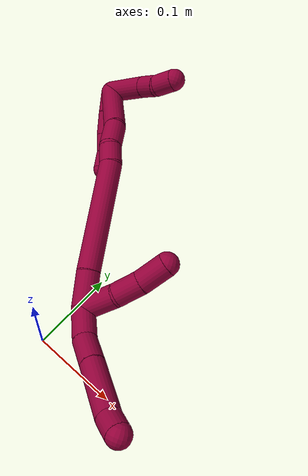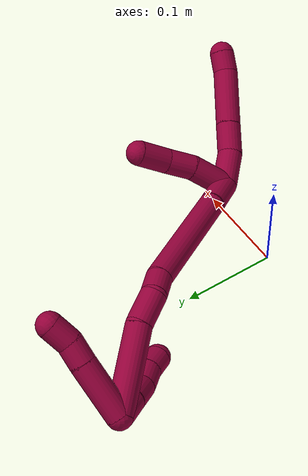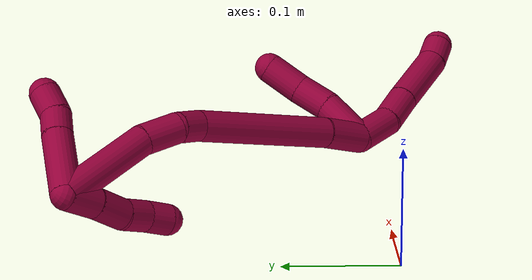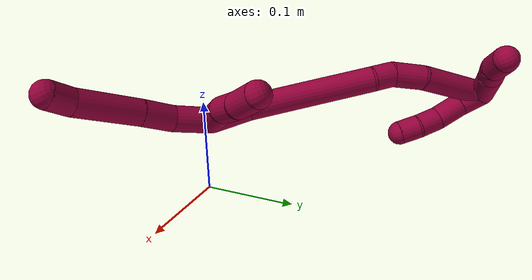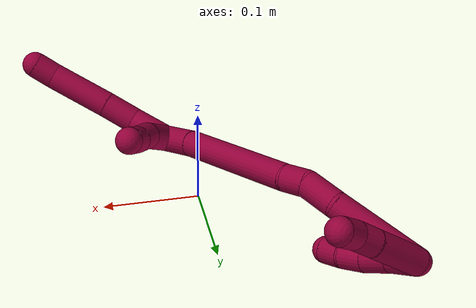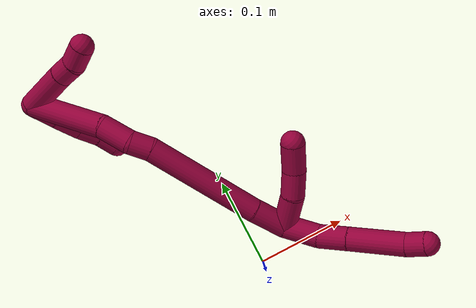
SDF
<sdf version="1.7">
 <world name="default">
  <model name="8">
   <static>0</static>
   <link name="8">
    <collision name="collision-cylinder-e_1_2_8">
     <pose>0.002131 -0.013171 -0.012913 2.34633 0.115004 0.272422</pose>
     <geometry><cylinder><radius>0.0125</radius><length>0.037136</length></cylinder></geometry>
     <surface>
      <friction><ode><mu>1.16</mu><mu2>1.16</mu2><slip1>0</slip1><slip2>0</slip2></ode></friction>
      <contact><ode><kp>1e+06</kp><kd>1</kd><max_vel>0</max_vel><min_depth>0.001</min_depth></ode></contact>
     </surface>
    </collision>
    <visual name="visual-cylinder-e_1_2_8">
     <pose>0.002131 -0.013171 -0.012913 2.34633 0.115004 0.272422</pose>
     <geometry><cylinder><radius>0.0125</radius><length>0.037136</length></cylinder></geometry>
     <material><ambient>0.584314 0 0.227451 1</ambient></material>
    </visual>
    <collision name="collision-cylinder-e_2_8_9">
     <pose>0.007365 -0.039971 -0.033172 2.06512 0.197854 0.329466</pose>
     <geometry><cylinder><radius>0.0125</radius><length>0.031581</length></cylinder></geometry>
     <surface>
      <friction><ode><mu>1.16</mu><mu2>1.16</mu2><slip1>0</slip1><slip2>0</slip2></ode></friction>
      <contact><ode><kp>1e+06</kp><kd>1</kd><max_vel>0</max_vel><min_depth>0.001</min_depth></ode></contact>
     </surface>
    </collision>
    <visual name="visual-cylinder-e_2_8_9">
     <pose>0.007365 -0.039971 -0.033172 2.06512 0.197854 0.329466</pose>
     <geometry><cylinder><radius>0.0125</radius><length>0.031581</length></cylinder></geometry>
     <material><ambient>0.584314 0 0.227451 1</ambient></material>
    </visual>
    <collision name="collision-cylinder-e_3_9_10">
     <pose>0.016707 -0.078807 -0.055343 2.10244 0.210161 0.364679</pose>
     <geometry><cylinder><radius>0.0125</radius><length>0.059804</length></cylinder></geometry>
     <surface>
      <friction><ode><mu>1.16</mu><mu2>1.16</mu2><slip1>0</slip1><slip2>0</slip2></ode></friction>
      <contact><ode><kp>1e+06</kp><kd>1</kd><max_vel>0</max_vel><min_depth>0.001</min_depth></ode></contact>
     </surface>
    </collision>
    <visual name="visual-cylinder-e_3_9_10">
     <pose>0.016707 -0.078807 -0.055343 2.10244 0.210161 0.364679</pose>
     <geometry><cylinder><radius>0.0125</radius><length>0.059804</length></cylinder></geometry>
     <material><ambient>0.584314 0 0.227451 1</ambient></material>
    </visual>
    <collision name="collision-cylinder-e_4_10_6">
     <pose>0.025448 -0.113992 -0.073256 1.87091 0.235201 0.317769</pose>
     <geometry><cylinder><radius>0.0125</radius><length>0.021479</length></cylinder></geometry>
     <surface>
      <friction><ode><mu>1.16</mu><mu2>1.16</mu2><slip1>0</slip1><slip2>0</slip2></ode></friction>
      <contact><ode><kp>1e+06</kp><kd>1</kd><max_vel>0</max_vel><min_depth>0.001</min_depth></ode></contact>
     </surface>
    </collision>
    <visual name="visual-cylinder-e_4_10_6">
     <pose>0.025448 -0.113992 -0.073256 1.87091 0.235201 0.317769</pose>
     <geometry><cylinder><radius>0.0125</radius><length>0.021479</length></cylinder></geometry>
     <material><ambient>0.584314 0 0.227451 1</ambient></material>
    </visual>
    <collision name="collision-cylinder-e_1_2_11">
     <pose>0.009949 -0.012005 0.01236 0.770799 0.523637 0.216573</pose>
     <geometry><cylinder><radius>0.0125</radius><length>0.039793</length></cylinder></geometry>
     <surface>
      <friction><ode><mu>1.16</mu><mu2>1.16</mu2><slip1>0</slip1><slip2>0</slip2></ode></friction>
      <contact><ode><kp>1e+06</kp><kd>1</kd><max_vel>0</max_vel><min_depth>0.001</min_depth></ode></contact>
     </surface>
    </collision>
    <visual name="visual-cylinder-e_1_2_11">
     <pose>0.009949 -0.012005 0.01236 0.770799 0.523637 0.216573</pose>
     <geometry><cylinder><radius>0.0125</radius><length>0.039793</length></cylinder></geometry>
     <material><ambient>0.584314 0 0.227451 1</ambient></material>
    </visual>
    <collision name="collision-cylinder-e_2_11_12">
     <pose>0.02797 -0.029822 0.034938 0.517295 0.601747 0.163824</pose>
     <geometry><cylinder><radius>0.0125</radius><length>0.02852</length></cylinder></geometry>
     <surface>
      <friction><ode><mu>1.16</mu><mu2>1.16</mu2><slip1>0</slip1><slip2>0</slip2></ode></friction>
      <contact><ode><kp>1e+06</kp><kd>1</kd><max_vel>0</max_vel><min_depth>0.001</min_depth></ode></contact>
     </surface>
    </collision>
    <visual name="visual-cylinder-e_2_11_12">
     <pose>0.02797 -0.029822 0.034938 0.517295 0.601747 0.163824</pose>
     <geometry><cylinder><radius>0.0125</radius><length>0.02852</length></cylinder></geometry>
     <material><ambient>0.584314 0 0.227451 1</ambient></material>
    </visual>
    <collision name="collision-cylinder-e_3_12_5">
     <pose>0.04297 -0.042406 0.057692 0.495145 0.452576 0.116254</pose>
     <geometry><cylinder><radius>0.0125</radius><length>0.031688</length></cylinder></geometry>
     <surface>
      <friction><ode><mu>1.16</mu><mu2>1.16</mu2><slip1>0</slip1><slip2>0</slip2></ode></friction>
      <contact><ode><kp>1e+06</kp><kd>1</kd><max_vel>0</max_vel><min_depth>0.001</min_depth></ode></contact>
     </surface>
    </collision>
    <visual name="visual-cylinder-e_3_12_5">
     <pose>0.04297 -0.042406 0.057692 0.495145 0.452576 0.116254</pose>
     <geometry><cylinder><radius>0.0125</radius><length>0.031688</length></cylinder></geometry>
     <material><ambient>0.584314 0 0.227451 1</ambient></material>
    </visual>
    <collision name="collision-cylinder-e_1_2_13">
     <pose>-0.002477 0.005154 0.018198 -0.276004 -0.130235 0.018113</pose>
     <geometry><cylinder><radius>0.0125</radius><length>0.038152</length></cylinder></geometry>
     <surface>
      <friction><ode><mu>1.16</mu><mu2>1.16</mu2><slip1>0</slip1><slip2>0</slip2></ode></friction>
      <contact><ode><kp>1e+06</kp><kd>1</kd><max_vel>0</max_vel><min_depth>0.001</min_depth></ode></contact>
     </surface>
    </collision>
    <visual name="visual-cylinder-e_1_2_13">
     <pose>-0.002477 0.005154 0.018198 -0.276004 -0.130235 0.018113</pose>
     <geometry><cylinder><radius>0.0125</radius><length>0.038152</length></cylinder></geometry>
     <material><ambient>0.584314 0 0.227451 1</ambient></material>
    </visual>
    <collision name="collision-cylinder-e_2_13_14">
     <pose>-0.007753 0.030241 0.094896 -0.328394 -0.045247 0.007498</pose>
     <geometry><cylinder><radius>0.0125</radius><length>0.12373</length></cylinder></geometry>
     <surface>
      <friction><ode><mu>1.16</mu><mu2>1.16</mu2><slip1>0</slip1><slip2>0</slip2></ode></friction>
      <contact><ode><kp>1e+06</kp><kd>1</kd><max_vel>0</max_vel><min_depth>0.001</min_depth></ode></contact>
     </surface>
    </collision>
    <visual name="visual-cylinder-e_2_13_14">
     <pose>-0.007753 0.030241 0.094896 -0.328394 -0.045247 0.007498</pose>
     <geometry><cylinder><radius>0.0125</radius><length>0.12373</length></cylinder></geometry>
     <material><ambient>0.584314 0 0.227451 1</ambient></material>
    </visual>
    <collision name="collision-cylinder-e_3_14_15">
     <pose>-0.012856 0.05517 0.16293 -0.482699 -0.210959 0.052109</pose>
     <geometry><cylinder><radius>0.0125</radius><length>0.022017</length></cylinder></geometry>
     <surface>
      <friction><ode><mu>1.16</mu><mu2>1.16</mu2><slip1>0</slip1><slip2>0</slip2></ode></friction>
      <contact><ode><kp>1e+06</kp><kd>1</kd><max_vel>0</max_vel><min_depth>0.001</min_depth></ode></contact>
     </surface>
    </collision>
    <visual name="visual-cylinder-e_3_14_15">
     <pose>-0.012856 0.05517 0.16293 -0.482699 -0.210959 0.052109</pose>
     <geometry><cylinder><radius>0.0125</radius><length>0.022017</length></cylinder></geometry>
     <material><ambient>0.584314 0 0.227451 1</ambient></material>
    </visual>
    <collision name="collision-cylinder-e_4_15_16">
     <pose>-0.01397 0.070174 0.18545 -0.656549 0.072573 -0.024728</pose>
     <geometry><cylinder><radius>0.0125</radius><length>0.032874</length></cylinder></geometry>
     <surface>
      <friction><ode><mu>1.16</mu><mu2>1.16</mu2><slip1>0</slip1><slip2>0</slip2></ode></friction>
      <contact><ode><kp>1e+06</kp><kd>1</kd><max_vel>0</max_vel><min_depth>0.001</min_depth></ode></contact>
     </surface>
    </collision>
    <visual name="visual-cylinder-e_4_15_16">
     <pose>-0.01397 0.070174 0.18545 -0.656549 0.072573 -0.024728</pose>
     <geometry><cylinder><radius>0.0125</radius><length>0.032874</length></cylinder></geometry>
     <material><ambient>0.584314 0 0.227451 1</ambient></material>
    </visual>
    <collision name="collision-cylinder-e_5_16_1">
     <pose>-0.014391 0.112594 0.224482 -0.893886 -0.038771 0.018584</pose>
     <geometry><cylinder><radius>0.0125</radius><length>0.083227</length></cylinder></geometry>
     <surface>
      <friction><ode><mu>1.16</mu><mu2>1.16</mu2><slip1>0</slip1><slip2>0</slip2></ode></friction>
      <contact><ode><kp>1e+06</kp><kd>1</kd><max_vel>0</max_vel><min_depth>0.001</min_depth></ode></contact>
     </surface>
    </collision>
    <visual name="visual-cylinder-e_5_16_1">
     <pose>-0.014391 0.112594 0.224482 -0.893886 -0.038771 0.018584</pose>
     <geometry><cylinder><radius>0.0125</radius><length>0.083227</length></cylinder></geometry>
     <material><ambient>0.584314 0 0.227451 1</ambient></material>
    </visual>
    <collision name="collision-cylinder-e_1_1_17">
     <pose>-0.0041 0.120118 0.254789 1.40127 0.440507 0.373244</pose>
     <geometry><cylinder><radius>0.0125</radius><length>0.055834</length></cylinder></geometry>
     <surface>
      <friction><ode><mu>1.16</mu><mu2>1.16</mu2><slip1>0</slip1><slip2>0</slip2></ode></friction>
      <contact><ode><kp>1e+06</kp><kd>1</kd><max_vel>0</max_vel><min_depth>0.001</min_depth></ode></contact>
     </surface>
    </collision>
    <visual name="visual-cylinder-e_1_1_17">
     <pose>-0.0041 0.120118 0.254789 1.40127 0.440507 0.373244</pose>
     <geometry><cylinder><radius>0.0125</radius><length>0.055834</length></cylinder></geometry>
     <material><ambient>0.584314 0 0.227451 1</ambient></material>
    </visual>
    <collision name="collision-cylinder-e_2_17_18">
     <pose>0.012302 0.085661 0.260034 1.46822 0.437543 0.395982</pose>
     <geometry><cylinder><radius>0.0125</radius><length>0.021235</length></cylinder></geometry>
     <surface>
      <friction><ode><mu>1.16</mu><mu2>1.16</mu2><slip1>0</slip1><slip2>0</slip2></ode></friction>
      <contact><ode><kp>1e+06</kp><kd>1</kd><max_vel>0</max_vel><min_depth>0.001</min_depth></ode></contact>
     </surface>
    </collision>
    <visual name="visual-cylinder-e_2_17_18">
     <pose>0.012302 0.085661 0.260034 1.46822 0.437543 0.395982</pose>
     <geometry><cylinder><radius>0.0125</radius><length>0.021235</length></cylinder></geometry>
     <material><ambient>0.584314 0 0.227451 1</ambient></material>
    </visual>
    <collision name="collision-cylinder-e_3_18_4">
     <pose>0.022581 0.067219 0.26541 1.11138 0.528354 0.33283</pose>
     <geometry><cylinder><radius>0.0125</radius><length>0.022931</length></cylinder></geometry>
     <surface>
      <friction><ode><mu>1.16</mu><mu2>1.16</mu2><slip1>0</slip1><slip2>0</slip2></ode></friction>
      <contact><ode><kp>1e+06</kp><kd>1</kd><max_vel>0</max_vel><min_depth>0.001</min_depth></ode></contact>
     </surface>
    </collision>
    <visual name="visual-cylinder-e_3_18_4">
     <pose>0.022581 0.067219 0.26541 1.11138 0.528354 0.33283</pose>
     <geometry><cylinder><radius>0.0125</radius><length>0.022931</length></cylinder></geometry>
     <material><ambient>0.584314 0 0.227451 1</ambient></material>
    </visual>
    <collision name="collision-cylinder-e_1_1_19">
     <pose>-0.013457 0.143169 0.237124 3.0053 0.186089 1.87856</pose>
     <geometry><cylinder><radius>0.0125</radius><length>0.027536</length></cylinder></geometry>
     <surface>
      <friction><ode><mu>1.16</mu><mu2>1.16</mu2><slip1>0</slip1><slip2>0</slip2></ode></friction>
      <contact><ode><kp>1e+06</kp><kd>1</kd><max_vel>0</max_vel><min_depth>0.001</min_depth></ode></contact>
     </surface>
    </collision>
    <visual name="visual-cylinder-e_1_1_19">
     <pose>-0.013457 0.143169 0.237124 3.0053 0.186089 1.87856</pose>
     <geometry><cylinder><radius>0.0125</radius><length>0.027536</length></cylinder></geometry>
     <material><ambient>0.584314 0 0.227451 1</ambient></material>
    </visual>
    <collision name="collision-cylinder-e_2_19_20">
     <pose>-0.007528 0.140486 0.21001 3.08008 0.241379 2.64471</pose>
     <geometry><cylinder><radius>0.0125</radius><length>0.028291</length></cylinder></geometry>
     <surface>
      <friction><ode><mu>1.16</mu><mu2>1.16</mu2><slip1>0</slip1><slip2>0</slip2></ode></friction>
      <contact><ode><kp>1e+06</kp><kd>1</kd><max_vel>0</max_vel><min_depth>0.001</min_depth></ode></contact>
     </surface>
    </collision>
    <visual name="visual-cylinder-e_2_19_20">
     <pose>-0.007528 0.140486 0.21001 3.08008 0.241379 2.64471</pose>
     <geometry><cylinder><radius>0.0125</radius><length>0.028291</length></cylinder></geometry>
     <material><ambient>0.584314 0 0.227451 1</ambient></material>
    </visual>
    <collision name="collision-cylinder-e_3_20_21">
     <pose>-0.001245 0.136006 0.185568 2.81498 0.25066 1.30558</pose>
     <geometry><cylinder><radius>0.0125</radius><length>0.023394</length></cylinder></geometry>
     <surface>
      <friction><ode><mu>1.16</mu><mu2>1.16</mu2><slip1>0</slip1><slip2>0</slip2></ode></friction>
      <contact><ode><kp>1e+06</kp><kd>1</kd><max_vel>0</max_vel><min_depth>0.001</min_depth></ode></contact>
     </surface>
    </collision>
    <visual name="visual-cylinder-e_3_20_21">
     <pose>-0.001245 0.136006 0.185568 2.81498 0.25066 1.30558</pose>
     <geometry><cylinder><radius>0.0125</radius><length>0.023394</length></cylinder></geometry>
     <material><ambient>0.584314 0 0.227451 1</ambient></material>
    </visual>
    <collision name="collision-cylinder-e_4_21_3">
     <pose>0.002523 0.130096 0.164735 2.92005 0.083534 0.718827</pose>
     <geometry><cylinder><radius>0.0125</radius><length>0.020779</length></cylinder></geometry>
     <surface>
      <friction><ode><mu>1.16</mu><mu2>1.16</mu2><slip1>0</slip1><slip2>0</slip2></ode></friction>
      <contact><ode><kp>1e+06</kp><kd>1</kd><max_vel>0</max_vel><min_depth>0.001</min_depth></ode></contact>
     </surface>
    </collision>
    <visual name="visual-cylinder-e_4_21_3">
     <pose>0.002523 0.130096 0.164735 2.92005 0.083534 0.718827</pose>
     <geometry><cylinder><radius>0.0125</radius><length>0.020779</length></cylinder></geometry>
     <material><ambient>0.584314 0 0.227451 1</ambient></material>
    </visual>
    <collision name="collision-sphere-3">
     <pose>0.00339 0.127821 0.154635 0 -0 0</pose>
     <geometry><sphere><radius>0.0125</radius></sphere></geometry>
     <surface>
      <friction><ode><mu>1.16</mu><mu2>1.16</mu2><slip1>0</slip1><slip2>0</slip2></ode></friction>
      <contact><ode><kp>1e+06</kp><kd>1</kd><max_vel>0</max_vel><min_depth>0.001</min_depth></ode></contact>
     </surface>
    </collision>
    <visual name="visual-sphere-3">
     <pose>0.00339 0.127821 0.154635 0 -0 0</pose>
     <geometry><sphere><radius>0.0125</radius></sphere></geometry>
     <material><ambient>0.584314 0 0.227451 1</ambient></material>
    </visual>
    <collision name="collision-sphere-21">
     <pose>0.001656 0.132371 0.174835 0 -0 0</pose>
     <geometry><sphere><radius>0.0125</radius></sphere></geometry>
     <surface>
      <friction><ode><mu>1.16</mu><mu2>1.16</mu2><slip1>0</slip1><slip2>0</slip2></ode></friction>
      <contact><ode><kp>1e+06</kp><kd>1</kd><max_vel>0</max_vel><min_depth>0.001</min_depth></ode></contact>
     </surface>
    </collision>
    <visual name="visual-sphere-21">
     <pose>0.001656 0.132371 0.174835 0 -0 0</pose>
     <geometry><sphere><radius>0.0125</radius></sphere></geometry>
     <material><ambient>0.584314 0 0.227451 1</ambient></material>
    </visual>
    <collision name="collision-sphere-20">
     <pose>-0.004146 0.139642 0.1963 0 -0 0</pose>
     <geometry><sphere><radius>0.0125</radius></sphere></geometry>
     <surface>
      <friction><ode><mu>1.16</mu><mu2>1.16</mu2><slip1>0</slip1><slip2>0</slip2></ode></friction>
      <contact><ode><kp>1e+06</kp><kd>1</kd><max_vel>0</max_vel><min_depth>0.001</min_depth></ode></contact>
     </surface>
    </collision>
    <visual name="visual-sphere-20">
     <pose>-0.004146 0.139642 0.1963 0 -0 0</pose>
     <geometry><sphere><radius>0.0125</radius></sphere></geometry>
     <material><ambient>0.584314 0 0.227451 1</ambient></material>
    </visual>
    <collision name="collision-sphere-19">
     <pose>-0.010909 0.141331 0.223719 0 -0 0</pose>
     <geometry><sphere><radius>0.0125</radius></sphere></geometry>
     <surface>
      <friction><ode><mu>1.16</mu><mu2>1.16</mu2><slip1>0</slip1><slip2>0</slip2></ode></friction>
      <contact><ode><kp>1e+06</kp><kd>1</kd><max_vel>0</max_vel><min_depth>0.001</min_depth></ode></contact>
     </surface>
    </collision>
    <visual name="visual-sphere-19">
     <pose>-0.010909 0.141331 0.223719 0 -0 0</pose>
     <geometry><sphere><radius>0.0125</radius></sphere></geometry>
     <material><ambient>0.584314 0 0.227451 1</ambient></material>
    </visual>
    <collision name="collision-sphere-11">
     <pose>0.019898 -0.024009 0.024721 0 -0 0</pose>
     <geometry><sphere><radius>0.0125</radius></sphere></geometry>
     <surface>
      <friction><ode><mu>1.16</mu><mu2>1.16</mu2><slip1>0</slip1><slip2>0</slip2></ode></friction>
      <contact><ode><kp>1e+06</kp><kd>1</kd><max_vel>0</max_vel><min_depth>0.001</min_depth></ode></contact>
     </surface>
    </collision>
    <visual name="visual-sphere-11">
     <pose>0.019898 -0.024009 0.024721 0 -0 0</pose>
     <geometry><sphere><radius>0.0125</radius></sphere></geometry>
     <material><ambient>0.584314 0 0.227451 1</ambient></material>
    </visual>
    <collision name="collision-sphere-6">
     <pose>0.027951 -0.123969 -0.076344 0 -0 0</pose>
     <geometry><sphere><radius>0.0125</radius></sphere></geometry>
     <surface>
      <friction><ode><mu>1.16</mu><mu2>1.16</mu2><slip1>0</slip1><slip2>0</slip2></ode></friction>
      <contact><ode><kp>1e+06</kp><kd>1</kd><max_vel>0</max_vel><min_depth>0.001</min_depth></ode></contact>
     </surface>
    </collision>
    <visual name="visual-sphere-6">
     <pose>0.027951 -0.123969 -0.076344 0 -0 0</pose>
     <geometry><sphere><radius>0.0125</radius></sphere></geometry>
     <material><ambient>0.584314 0 0.227451 1</ambient></material>
    </visual>
    <collision name="collision-sphere-10">
     <pose>0.022945 -0.104015 -0.070169 0 -0 0</pose>
     <geometry><sphere><radius>0.0125</radius></sphere></geometry>
     <surface>
      <friction><ode><mu>1.16</mu><mu2>1.16</mu2><slip1>0</slip1><slip2>0</slip2></ode></friction>
      <contact><ode><kp>1e+06</kp><kd>1</kd><max_vel>0</max_vel><min_depth>0.001</min_depth></ode></contact>
     </surface>
    </collision>
    <visual name="visual-sphere-10">
     <pose>0.022945 -0.104015 -0.070169 0 -0 0</pose>
     <geometry><sphere><radius>0.0125</radius></sphere></geometry>
     <material><ambient>0.584314 0 0.227451 1</ambient></material>
    </visual>
    <collision name="collision-sphere-9">
     <pose>0.010469 -0.0536 -0.040518 0 -0 0</pose>
     <geometry><sphere><radius>0.0125</radius></sphere></geometry>
     <surface>
      <friction><ode><mu>1.16</mu><mu2>1.16</mu2><slip1>0</slip1><slip2>0</slip2></ode></friction>
      <contact><ode><kp>1e+06</kp><kd>1</kd><max_vel>0</max_vel><min_depth>0.001</min_depth></ode></contact>
     </surface>
    </collision>
    <visual name="visual-sphere-9">
     <pose>0.010469 -0.0536 -0.040518 0 -0 0</pose>
     <geometry><sphere><radius>0.0125</radius></sphere></geometry>
     <material><ambient>0.584314 0 0.227451 1</ambient></material>
    </visual>
    <collision name="collision-sphere-2">
     <geometry><sphere><radius>0.0125</radius></sphere></geometry>
     <surface>
      <friction><ode><mu>1.16</mu><mu2>1.16</mu2><slip1>0</slip1><slip2>0</slip2></ode></friction>
      <contact><ode><kp>1e+06</kp><kd>1</kd><max_vel>0</max_vel><min_depth>0.001</min_depth></ode></contact>
     </surface>
    </collision>
    <visual name="visual-sphere-2">
     <geometry><sphere><radius>0.0125</radius></sphere></geometry>
     <material><ambient>0.584314 0 0.227451 1</ambient></material>
    </visual>
    <collision name="collision-sphere-8">
     <pose>0.004261 -0.026341 -0.025827 0 -0 0</pose>
     <geometry><sphere><radius>0.0125</radius></sphere></geometry>
     <surface>
      <friction><ode><mu>1.16</mu><mu2>1.16</mu2><slip1>0</slip1><slip2>0</slip2></ode></friction>
      <contact><ode><kp>1e+06</kp><kd>1</kd><max_vel>0</max_vel><min_depth>0.001</min_depth></ode></contact>
     </surface>
    </collision>
    <visual name="visual-sphere-8">
     <pose>0.004261 -0.026341 -0.025827 0 -0 0</pose>
     <geometry><sphere><radius>0.0125</radius></sphere></geometry>
     <material><ambient>0.584314 0 0.227451 1</ambient></material>
    </visual>
    <collision name="collision-sphere-12">
     <pose>0.036042 -0.035636 0.045155 0 -0 0</pose>
     <geometry><sphere><radius>0.0125</radius></sphere></geometry>
     <surface>
      <friction><ode><mu>1.16</mu><mu2>1.16</mu2><slip1>0</slip1><slip2>0</slip2></ode></friction>
      <contact><ode><kp>1e+06</kp><kd>1</kd><max_vel>0</max_vel><min_depth>0.001</min_depth></ode></contact>
     </surface>
    </collision>
    <visual name="visual-sphere-12">
     <pose>0.036042 -0.035636 0.045155 0 -0 0</pose>
     <geometry><sphere><radius>0.0125</radius></sphere></geometry>
     <material><ambient>0.584314 0 0.227451 1</ambient></material>
    </visual>
    <collision name="collision-sphere-5">
     <pose>0.049899 -0.049176 0.07023 0 -0 0</pose>
     <geometry><sphere><radius>0.0125</radius></sphere></geometry>
     <surface>
      <friction><ode><mu>1.16</mu><mu2>1.16</mu2><slip1>0</slip1><slip2>0</slip2></ode></friction>
      <contact><ode><kp>1e+06</kp><kd>1</kd><max_vel>0</max_vel><min_depth>0.001</min_depth></ode></contact>
     </surface>
    </collision>
    <visual name="visual-sphere-5">
     <pose>0.049899 -0.049176 0.07023 0 -0 0</pose>
     <geometry><sphere><radius>0.0125</radius></sphere></geometry>
     <material><ambient>0.584314 0 0.227451 1</ambient></material>
    </visual>
    <collision name="collision-sphere-13">
     <pose>-0.004955 0.010309 0.036397 0 -0 0</pose>
     <geometry><sphere><radius>0.0125</radius></sphere></geometry>
     <surface>
      <friction><ode><mu>1.16</mu><mu2>1.16</mu2><slip1>0</slip1><slip2>0</slip2></ode></friction>
      <contact><ode><kp>1e+06</kp><kd>1</kd><max_vel>0</max_vel><min_depth>0.001</min_depth></ode></contact>
     </surface>
    </collision>
    <visual name="visual-sphere-13">
     <pose>-0.004955 0.010309 0.036397 0 -0 0</pose>
     <geometry><sphere><radius>0.0125</radius></sphere></geometry>
     <material><ambient>0.584314 0 0.227451 1</ambient></material>
    </visual>
    <collision name="collision-sphere-14">
     <pose>-0.010551 0.050174 0.153395 0 -0 0</pose>
     <geometry><sphere><radius>0.0125</radius></sphere></geometry>
     <surface>
      <friction><ode><mu>1.16</mu><mu2>1.16</mu2><slip1>0</slip1><slip2>0</slip2></ode></friction>
      <contact><ode><kp>1e+06</kp><kd>1</kd><max_vel>0</max_vel><min_depth>0.001</min_depth></ode></contact>
     </surface>
    </collision>
    <visual name="visual-sphere-14">
     <pose>-0.010551 0.050174 0.153395 0 -0 0</pose>
     <geometry><sphere><radius>0.0125</radius></sphere></geometry>
     <material><ambient>0.584314 0 0.227451 1</ambient></material>
    </visual>
    <collision name="collision-sphere-15">
     <pose>-0.015162 0.060167 0.172465 0 -0 0</pose>
     <geometry><sphere><radius>0.0125</radius></sphere></geometry>
     <surface>
      <friction><ode><mu>1.16</mu><mu2>1.16</mu2><slip1>0</slip1><slip2>0</slip2></ode></friction>
      <contact><ode><kp>1e+06</kp><kd>1</kd><max_vel>0</max_vel><min_depth>0.001</min_depth></ode></contact>
     </surface>
    </collision>
    <visual name="visual-sphere-15">
     <pose>-0.015162 0.060167 0.172465 0 -0 0</pose>
     <geometry><sphere><radius>0.0125</radius></sphere></geometry>
     <material><ambient>0.584314 0 0.227451 1</ambient></material>
    </visual>
    <collision name="collision-sphere-16">
     <pose>-0.012778 0.08018 0.198436 0 -0 0</pose>
     <geometry><sphere><radius>0.0125</radius></sphere></geometry>
     <surface>
      <friction><ode><mu>1.16</mu><mu2>1.16</mu2><slip1>0</slip1><slip2>0</slip2></ode></friction>
      <contact><ode><kp>1e+06</kp><kd>1</kd><max_vel>0</max_vel><min_depth>0.001</min_depth></ode></contact>
     </surface>
    </collision>
    <visual name="visual-sphere-16">
     <pose>-0.012778 0.08018 0.198436 0 -0 0</pose>
     <geometry><sphere><radius>0.0125</radius></sphere></geometry>
     <material><ambient>0.584314 0 0.227451 1</ambient></material>
    </visual>
    <collision name="collision-sphere-1">
     <pose>-0.016004 0.145007 0.250529 0 -0 0</pose>
     <geometry><sphere><radius>0.0125</radius></sphere></geometry>
     <surface>
      <friction><ode><mu>1.16</mu><mu2>1.16</mu2><slip1>0</slip1><slip2>0</slip2></ode></friction>
      <contact><ode><kp>1e+06</kp><kd>1</kd><max_vel>0</max_vel><min_depth>0.001</min_depth></ode></contact>
     </surface>
    </collision>
    <visual name="visual-sphere-1">
     <pose>-0.016004 0.145007 0.250529 0 -0 0</pose>
     <geometry><sphere><radius>0.0125</radius></sphere></geometry>
     <material><ambient>0.584314 0 0.227451 1</ambient></material>
    </visual>
    <collision name="collision-sphere-18">
     <pose>0.016801 0.076094 0.261019 0 -0 0</pose>
     <geometry><sphere><radius>0.0125</radius></sphere></geometry>
     <surface>
      <friction><ode><mu>1.16</mu><mu2>1.16</mu2><slip1>0</slip1><slip2>0</slip2></ode></friction>
      <contact><ode><kp>1e+06</kp><kd>1</kd><max_vel>0</max_vel><min_depth>0.001</min_depth></ode></contact>
     </surface>
    </collision>
    <visual name="visual-sphere-18">
     <pose>0.016801 0.076094 0.261019 0 -0 0</pose>
     <geometry><sphere><radius>0.0125</radius></sphere></geometry>
     <material><ambient>0.584314 0 0.227451 1</ambient></material>
    </visual>
    <collision name="collision-sphere-17">
     <pose>0.007804 0.095228 0.25905 0 -0 0</pose>
     <geometry><sphere><radius>0.0125</radius></sphere></geometry>
     <surface>
      <friction><ode><mu>1.16</mu><mu2>1.16</mu2><slip1>0</slip1><slip2>0</slip2></ode></friction>
      <contact><ode><kp>1e+06</kp><kd>1</kd><max_vel>0</max_vel><min_depth>0.001</min_depth></ode></contact>
     </surface>
    </collision>
    <visual name="visual-sphere-17">
     <pose>0.007804 0.095228 0.25905 0 -0 0</pose>
     <geometry><sphere><radius>0.0125</radius></sphere></geometry>
     <material><ambient>0.584314 0 0.227451 1</ambient></material>
    </visual>
    <collision name="collision-sphere-4">
     <pose>0.028361 0.058344 0.269801 0 -0 0</pose>
     <geometry><sphere><radius>0.0125</radius></sphere></geometry>
     <surface>
      <friction><ode><mu>1.16</mu><mu2>1.16</mu2><slip1>0</slip1><slip2>0</slip2></ode></friction>
      <contact><ode><kp>1e+06</kp><kd>1</kd><max_vel>0</max_vel><min_depth>0.001</min_depth></ode></contact>
     </surface>
    </collision>
    <visual name="visual-sphere-4">
     <pose>0.028361 0.058344 0.269801 0 -0 0</pose>
     <geometry><sphere><radius>0.0125</radius></sphere></geometry>
     <material><ambient>0.584314 0 0.227451 1</ambient></material>
    </visual>
    <inertial>
     <pose>0.001878 0.03882 0.111703 0 -0 0</pose>
     <mass>0.75</mass>
     <inertia>
      <ixx>0.00032</ixx>
      <ixy>0</ixy>
      <ixz>0</ixz>
      <iyy>0.000221</iyy>
      <iyz>0</iyz>
      <izz>-4.5e-05</izz>
     </inertia>
    </inertial>
   </link>
   <pose>0.038758 0.033265 0.099741 -1.05875 0.425383 0.583726</pose>
  </model>
 </world>
</sdf>
